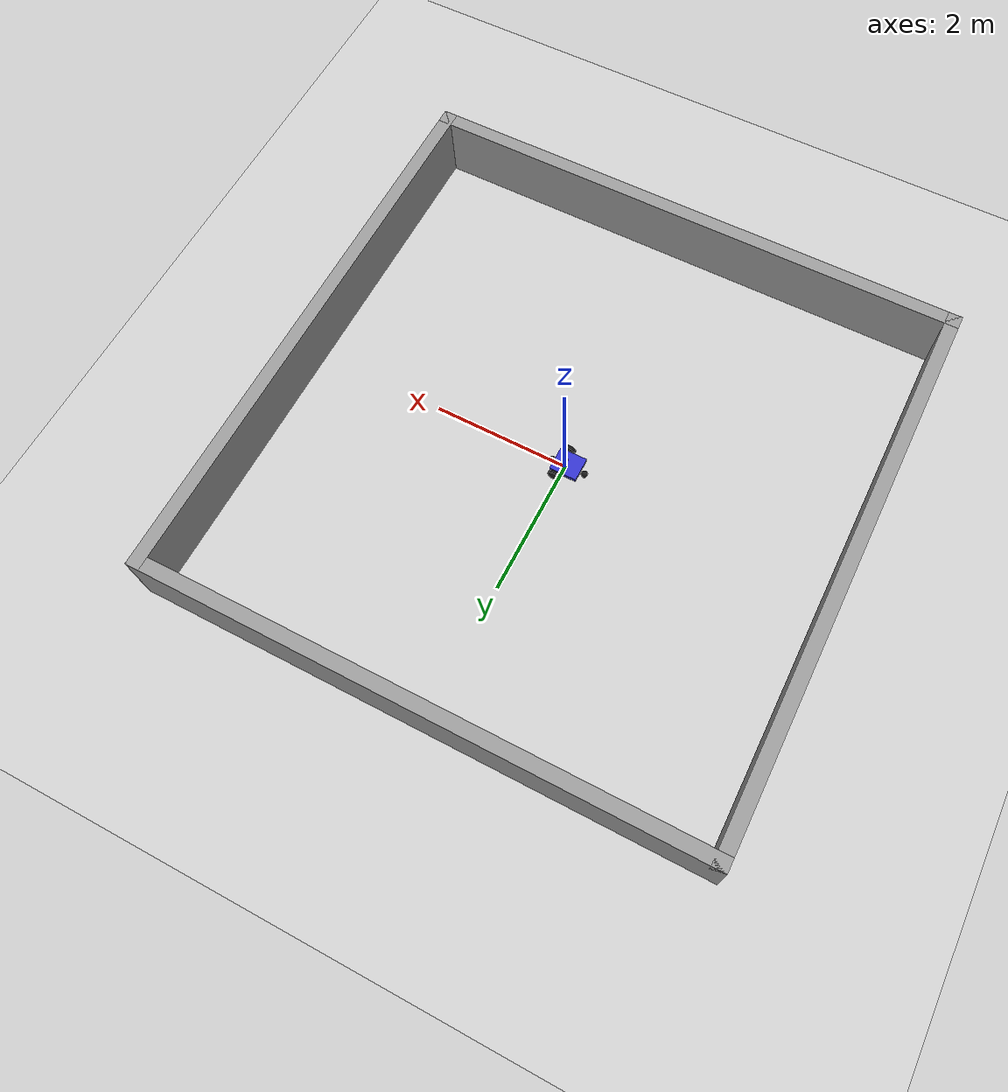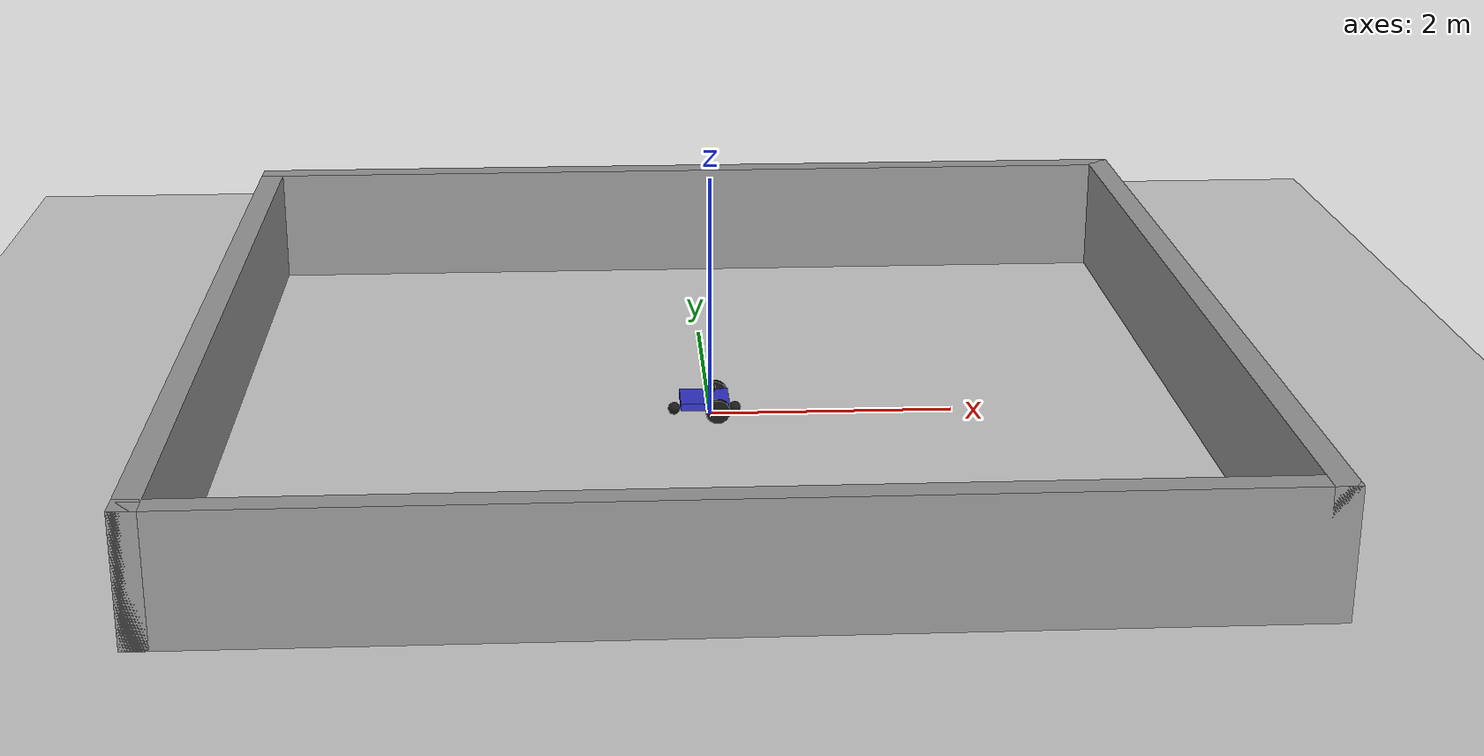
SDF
<?xml version="1.0" ?>
<sdf version="1.10">
  <world name="diffbot_world">

    <physics name="1ms" type="ignored">
      <max_step_size>0.001</max_step_size>
      <real_time_factor>1.0</real_time_factor>
    </physics>

    <plugin filename="gz-sim-physics-system" name="gz::sim::systems::Physics"></plugin>
    <plugin filename="gz-sim-user-commands-system" name="gz::sim::systems::UserCommands"></plugin>
    <plugin filename="gz-sim-scene-broadcaster-system" name="gz::sim::systems::SceneBroadcaster"></plugin>
    <plugin filename="gz-sim-sensors-system" name="gz::sim::systems::Sensors">
      <render_engine>ogre2</render_engine>
    </plugin>

    <light type="directional" name="sun">
      <cast_shadows>true</cast_shadows>
      <pose>0 0 10 0 0 0</pose>
      <diffuse>0.8 0.8 0.8 1</diffuse>
      <specular>0.2 0.2 0.2 1</specular>
      <attenuation>
        <range>1000</range>
        <constant>0.9</constant>
        <linear>0.01</linear>
        <quadratic>0.001</quadratic>
      </attenuation>
      <direction>-0.5 0.1 -0.9</direction>
    </light>

    <model name="ground_plane">
      <static>true</static>
      <link name="link">
        <collision name="collision">
          <geometry>
            <plane>
              <normal>0 0 1</normal>
              <size>100 100</size>
            </plane>
          </geometry>
        </collision>
        <visual name="visual">
          <geometry>
            <plane>
              <normal>0 0 1</normal>
              <size>100 100</size>
            </plane>
          </geometry>
          <material>
            <ambient>0.8 0.8 0.8 1</ambient>
            <diffuse>0.8 0.8 0.8 1</diffuse>
            <specular>0.8 0.8 0.8 1</specular>
          </material>
        </visual>
      </link>
    </model>

    <!-- Square arena so a 360 deg lidar always gets a finite return -->
    <model name="arena_wall_north">
      <static>true</static>
      <pose>0 4 0.5 0 0 0</pose>
      <link name="link">
        <collision name="collision">
          <geometry><box><size>8.2 0.2 1.0</size></box></geometry>
        </collision>
        <visual name="visual">
          <geometry><box><size>8.2 0.2 1.0</size></box></geometry>
          <material><ambient>0.6 0.6 0.6 1</ambient><diffuse>0.6 0.6 0.6 1</diffuse></material>
        </visual>
      </link>
    </model>
    <model name="arena_wall_south">
      <static>true</static>
      <pose>0 -4 0.5 0 0 0</pose>
      <link name="link">
        <collision name="collision">
          <geometry><box><size>8.2 0.2 1.0</size></box></geometry>
        </collision>
        <visual name="visual">
          <geometry><box><size>8.2 0.2 1.0</size></box></geometry>
          <material><ambient>0.6 0.6 0.6 1</ambient><diffuse>0.6 0.6 0.6 1</diffuse></material>
        </visual>
      </link>
    </model>
    <model name="arena_wall_east">
      <static>true</static>
      <pose>4 0 0.5 0 0 1.5707963</pose>
      <link name="link">
        <collision name="collision">
          <geometry><box><size>8.2 0.2 1.0</size></box></geometry>
        </collision>
        <visual name="visual">
          <geometry><box><size>8.2 0.2 1.0</size></box></geometry>
          <material><ambient>0.6 0.6 0.6 1</ambient><diffuse>0.6 0.6 0.6 1</diffuse></material>
        </visual>
      </link>
    </model>
    <model name="arena_wall_west">
      <static>true</static>
      <pose>-4 0 0.5 0 0 1.5707963</pose>
      <link name="link">
        <collision name="collision">
          <geometry><box><size>8.2 0.2 1.0</size></box></geometry>
        </collision>
        <visual name="visual">
          <geometry><box><size>8.2 0.2 1.0</size></box></geometry>
          <material><ambient>0.6 0.6 0.6 1</ambient><diffuse>0.6 0.6 0.6 1</diffuse></material>
        </visual>
      </link>
    </model>

    <model name="diffbot">
      <pose>0 0 0.1 0 0 0</pose>

      <link name="chassis">
        <pose>-0.05 0 0.02 0 0 0</pose>
        <inertial>
          <mass>5.0</mass>
          <inertia>
            <ixx>0.0625</ixx><ixy>0</ixy><ixz>0</ixz>
            <iyy>0.1458</iyy><iyz>0</iyz>
            <izz>0.2</izz>
          </inertia>
        </inertial>
        <visual name="visual">
          <geometry><box><size>0.4 0.35 0.06</size></box></geometry>
          <material>
            <ambient>0.2 0.2 0.8 1</ambient>
            <diffuse>0.2 0.2 0.8 1</diffuse>
            <specular>0.2 0.2 0.8 1</specular>
          </material>
        </visual>
        <collision name="collision">
          <geometry><box><size>0.4 0.35 0.06</size></box></geometry>
        </collision>
      </link>

      <link name="left_wheel">
        <pose>0.05 0.22 0 -1.5707963 0 0</pose>
        <inertial>
          <mass>0.5</mass>
          <inertia>
            <ixx>0.00073</ixx><ixy>0</ixy><ixz>0</ixz>
            <iyy>0.00073</iyy><iyz>0</iyz>
            <izz>0.00125</izz>
          </inertia>
        </inertial>
        <visual name="visual">
          <geometry><cylinder><radius>0.1</radius><length>0.04</length></cylinder></geometry>
          <material>
            <ambient>0.1 0.1 0.1 1</ambient>
            <diffuse>0.1 0.1 0.1 1</diffuse>
          </material>
        </visual>
        <collision name="collision">
          <geometry><cylinder><radius>0.1</radius><length>0.04</length></cylinder></geometry>
          <surface>
            <friction>
              <ode><mu>1.2</mu><mu2>1.2</mu2></ode>
            </friction>
          </surface>
        </collision>
      </link>

      <link name="right_wheel">
        <pose>0.05 -0.22 0 -1.5707963 0 0</pose>
        <inertial>
          <mass>0.5</mass>
          <inertia>
            <ixx>0.00073</ixx><ixy>0</ixy><ixz>0</ixz>
            <iyy>0.00073</iyy><iyz>0</iyz>
            <izz>0.00125</izz>
          </inertia>
        </inertial>
        <visual name="visual">
          <geometry><cylinder><radius>0.1</radius><length>0.04</length></cylinder></geometry>
          <material>
            <ambient>0.1 0.1 0.1 1</ambient>
            <diffuse>0.1 0.1 0.1 1</diffuse>
          </material>
        </visual>
        <collision name="collision">
          <geometry><cylinder><radius>0.1</radius><length>0.04</length></cylinder></geometry>
          <surface>
            <friction>
              <ode><mu>1.2</mu><mu2>1.2</mu2></ode>
            </friction>
          </surface>
        </collision>
      </link>

      <link name="caster_front">
        <pose>0.2 0 -0.05 0 0 0</pose>
        <inertial>
          <mass>0.15</mass>
          <inertia>
            <ixx>0.0001</ixx><ixy>0</ixy><ixz>0</ixz>
            <iyy>0.0001</iyy><iyz>0</iyz>
            <izz>0.0001</izz>
          </inertia>
        </inertial>
        <visual name="visual">
          <geometry><sphere><radius>0.05</radius></sphere></geometry>
          <material>
            <ambient>0.1 0.1 0.1 1</ambient>
            <diffuse>0.1 0.1 0.1 1</diffuse>
          </material>
        </visual>
        <collision name="collision">
          <geometry><sphere><radius>0.05</radius></sphere></geometry>
          <surface>
            <friction>
              <ode><mu>0.01</mu><mu2>0.01</mu2></ode>
            </friction>
          </surface>
        </collision>
      </link>

      <link name="caster_rear">
        <pose>-0.3 0 -0.05 0 0 0</pose>
        <inertial>
          <mass>0.15</mass>
          <inertia>
            <ixx>0.0001</ixx><ixy>0</ixy><ixz>0</ixz>
            <iyy>0.0001</iyy><iyz>0</iyz>
            <izz>0.0001</izz>
          </inertia>
        </inertial>
        <visual name="visual">
          <geometry><sphere><radius>0.05</radius></sphere></geometry>
          <material>
            <ambient>0.1 0.1 0.1 1</ambient>
            <diffuse>0.1 0.1 0.1 1</diffuse>
          </material>
        </visual>
        <collision name="collision">
          <geometry><sphere><radius>0.05</radius></sphere></geometry>
          <surface>
            <friction>
              <ode><mu>0.01</mu><mu2>0.01</mu2></ode>
            </friction>
          </surface>
        </collision>
      </link>

      <link name="lidar_link">
        <pose>0 0 0.12 0 0 0</pose>
        <inertial>
          <mass>0.05</mass>
          <inertia>
            <ixx>0.00001</ixx><ixy>0</ixy><ixz>0</ixz>
            <iyy>0.00001</iyy><iyz>0</iyz>
            <izz>0.00001</izz>
          </inertia>
        </inertial>
        <visual name="visual">
          <geometry><cylinder><radius>0.04</radius><length>0.04</length></cylinder></geometry>
          <material>
            <ambient>0.1 0.1 0.1 1</ambient>
            <diffuse>0.1 0.1 0.1 1</diffuse>
          </material>
        </visual>
        <sensor name="gpu_lidar" type="gpu_lidar">
          <topic>/scan</topic>
          <update_rate>10</update_rate>
          <always_on>1</always_on>
          <visualize>true</visualize>
          <lidar>
            <scan>
              <horizontal>
                <samples>360</samples>
                <resolution>1</resolution>
                <min_angle>-3.14159265</min_angle>
                <max_angle>3.14159265</max_angle>
              </horizontal>
            </scan>
            <range>
              <min>0.1</min>
              <max>12.0</max>
              <resolution>0.01</resolution>
            </range>
          </lidar>
        </sensor>
      </link>

      <joint name="left_wheel_joint" type="revolute">
        <parent>chassis</parent>
        <child>left_wheel</child>
        <axis>
          <xyz>0 0 1</xyz>
          <limit>
            <lower>-1.79769e+308</lower>
            <upper>1.79769e+308</upper>
          </limit>
        </axis>
      </joint>

      <joint name="right_wheel_joint" type="revolute">
        <parent>chassis</parent>
        <child>right_wheel</child>
        <axis>
          <xyz>0 0 1</xyz>
          <limit>
            <lower>-1.79769e+308</lower>
            <upper>1.79769e+308</upper>
          </limit>
        </axis>
      </joint>

      <joint name="caster_front_joint" type="ball">
        <parent>chassis</parent>
        <child>caster_front</child>
      </joint>

      <joint name="caster_rear_joint" type="ball">
        <parent>chassis</parent>
        <child>caster_rear</child>
      </joint>

      <joint name="lidar_joint" type="fixed">
        <parent>chassis</parent>
        <child>lidar_link</child>
      </joint>

      <plugin filename="gz-sim-diff-drive-system" name="gz::sim::systems::DiffDrive">
        <left_joint>left_wheel_joint</left_joint>
        <right_joint>right_wheel_joint</right_joint>
        <wheel_separation>0.44</wheel_separation>
        <wheel_radius>0.1</wheel_radius>
        <odom_publish_frequency>20</odom_publish_frequency>
        <topic>/cmd_vel</topic>
        <tf_topic>/tf</tf_topic>
        <odom_topic>/odom</odom_topic>
        <max_linear_acceleration>1.5</max_linear_acceleration>
        <min_linear_acceleration>-1.5</min_linear_acceleration>
        <max_angular_acceleration>3</max_angular_acceleration>
        <min_angular_acceleration>-3</min_angular_acceleration>
        <max_linear_velocity>0.6</max_linear_velocity>
        <min_linear_velocity>-0.6</min_linear_velocity>
        <max_angular_velocity>1.5</max_angular_velocity>
        <min_angular_velocity>-1.5</min_angular_velocity>
      </plugin>

      <plugin filename="gz-sim-joint-state-publisher-system" name="gz::sim::systems::JointStatePublisher"></plugin>

    </model>

  </world>
</sdf>
